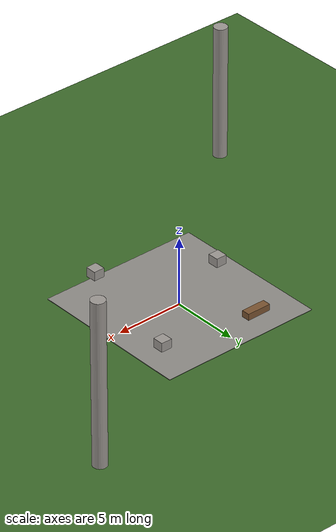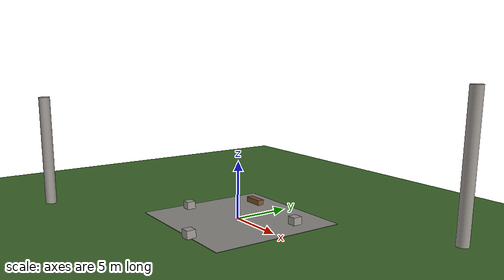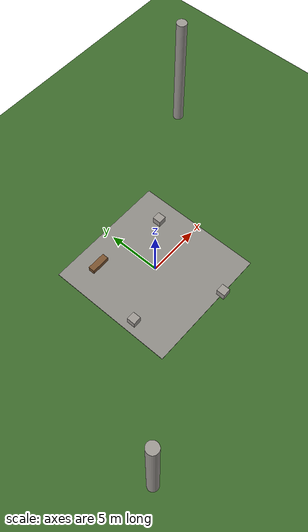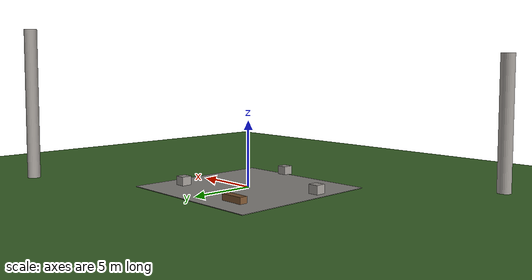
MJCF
<mujoco model="scene_courtyard">

  <include file="common_assets.xml"/>

  <option gravity="0 0 -9.81"/>

  <visual>
    <headlight ambient="0.4 0.4 0.4" diffuse="0.55 0.55 0.5" specular="0.15 0.15 0.15"/>
    <rgba haze="0.75 0.82 0.9 1"/>
    <map fogstart="15" fogend="45"/>
  </visual>

  <worldbody>
    <light name="sun" pos="6 -6 10" dir="-0.5 0.5 -1" diffuse="0.9 0.88 0.8" specular="0.25 0.25 0.2" castshadow="true"/>
    <light name="sky_fill" pos="-6 6 8" dir="0.4 -0.4 -1" diffuse="0.25 0.28 0.32" castshadow="false"/>

    <!-- Ground: mixed grass field with a concrete patio patch near center -->
    <geom name="ground_grass" type="plane" size="35 35 0.1" material="mat_grass" pos="0 0 0"/>
    <geom name="patio" type="box" size="6 6 0.02" pos="0 0 0.01" material="mat_concrete"/>

    <!-- Sparse props: low planters / blocks, spaced far apart for long sightlines -->
    <geom name="planter_01" type="box" size="0.4 0.4 0.35" pos="4 3 0.35" material="mat_concrete_block"/>
    <geom name="planter_02" type="box" size="0.4 0.4 0.35" pos="-5 -2 0.35" material="mat_concrete_block"/>
    <geom name="planter_03" type="box" size="0.4 0.4 0.35" pos="2 -6 0.35" material="mat_concrete_block"/>
    <geom name="bench_01" type="box" size="0.9 0.3 0.25" pos="-3 4 0.25" material="mat_crate"/>

    <!-- A couple of taller, distant landmarks for long-range parallax,
         placed near the edge of the usable flight volume: visual reference
         only, not clutter meant to be avoided -->
    <geom name="landmark_tower_01" type="cylinder" size="0.5 6" pos="15 10 6" material="mat_concrete_block"/>
    <geom name="landmark_tower_02" type="cylinder" size="0.5 5" pos="-14 -12 5" material="mat_concrete_block"/>
  </worldbody>
</mujoco>

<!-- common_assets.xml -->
<mujoco model="common_assets">

  <asset>
    <!-- Skybox: gradient sky, shared by outdoor-facing scenes -->
    <texture name="sky_gradient" type="skybox" builtin="gradient"
             rgb1="0.45 0.62 0.85" rgb2="0.9 0.95 1.0" width="512" height="512"/>

    <!-- Ground textures -->
    <texture name="floor_checker" type="2d" builtin="checker"
              rgb1="0.55 0.55 0.58" rgb2="0.35 0.35 0.38"
              width="512" height="512" mark="edge" markrgb="0.2 0.2 0.2"/>
    <material name="mat_floor_checker" texture="floor_checker"
              texrepeat="12 12" reflectance="0.05" specular="0.1" shininess="0.05"/>

    <texture name="ground_concrete" type="2d" builtin="flat" rgb1="0.56 0.55 0.53"
              width="512" height="512"/>
    <material name="mat_concrete" texture="ground_concrete"
              texrepeat="10 10" reflectance="0.03" specular="0.05" shininess="0.02"/>

    <texture name="ground_grass" type="2d" builtin="checker" rgb1="0.22 0.4 0.16" rgb2="0.26 0.44 0.18"
              width="256" height="256"/>
    <material name="mat_grass" texture="ground_grass"
              texrepeat="24 24" reflectance="0.0" specular="0.02" shininess="0.01"/>

    <!-- Wall / panel texture (warehouse interior) -->
    <texture name="wall_panel" type="2d" builtin="flat" rgb1="0.78 0.76 0.72"
              width="256" height="256"/>
    <material name="mat_wall" texture="wall_panel" texrepeat="4 2"
              reflectance="0.02" specular="0.05" shininess="0.02"/>

    <!-- Crate / prop textures -->
    <texture name="crate_wood" type="2d" builtin="checker" rgb1="0.55 0.38 0.22" rgb2="0.42 0.28 0.16"
              width="128" height="128" mark="cross" markrgb="0.3 0.2 0.1"/>
    <material name="mat_crate" texture="crate_wood" texrepeat="2 2"
              reflectance="0.02" specular="0.1" shininess="0.05"/>

    <material name="mat_concrete_block" rgba="0.62 0.6 0.58 1" reflectance="0.03"/>
  </asset>

</mujoco>
